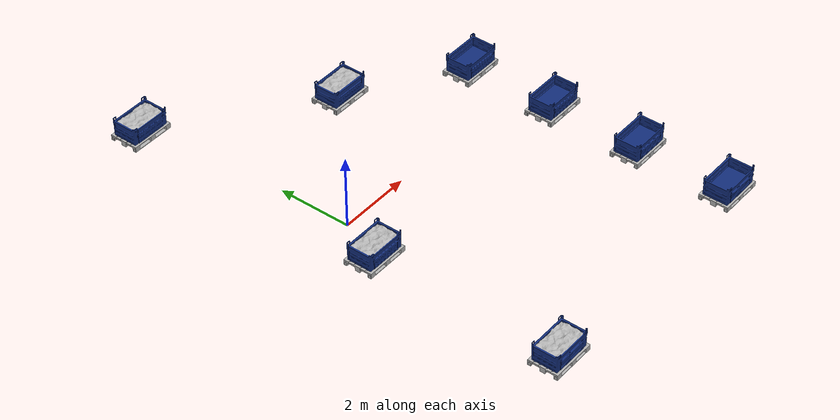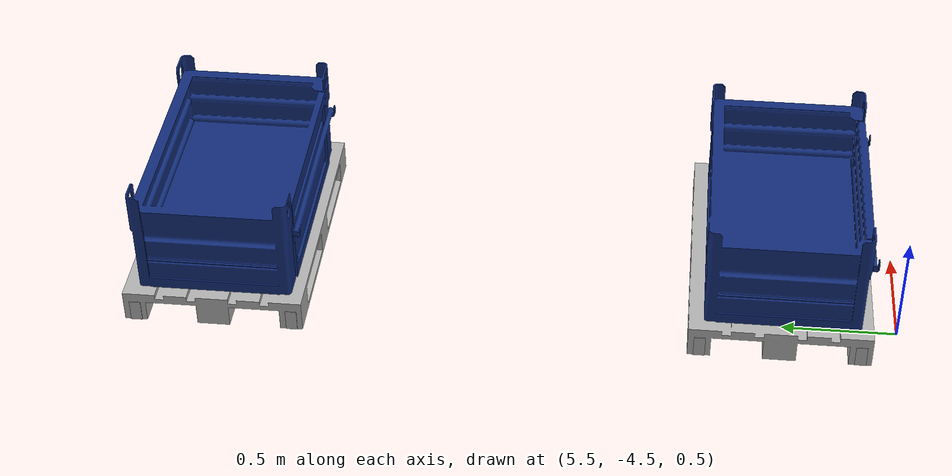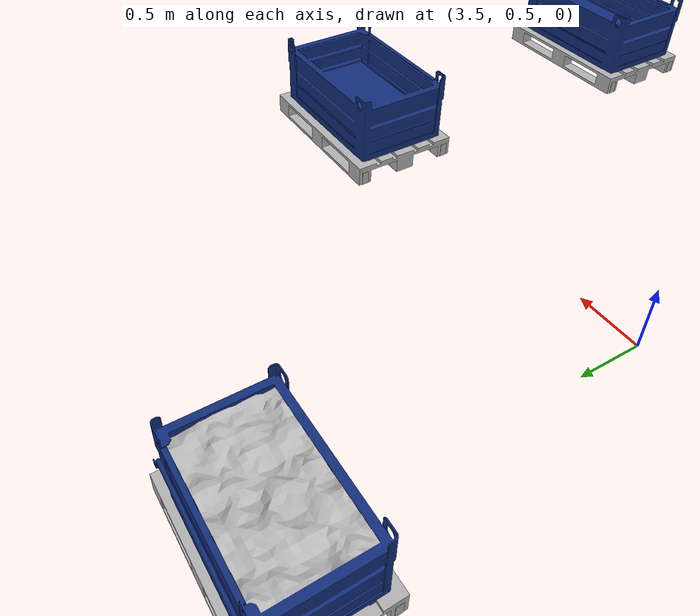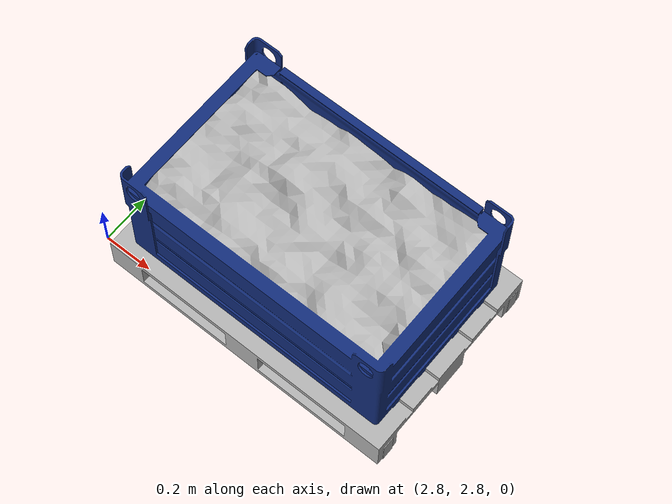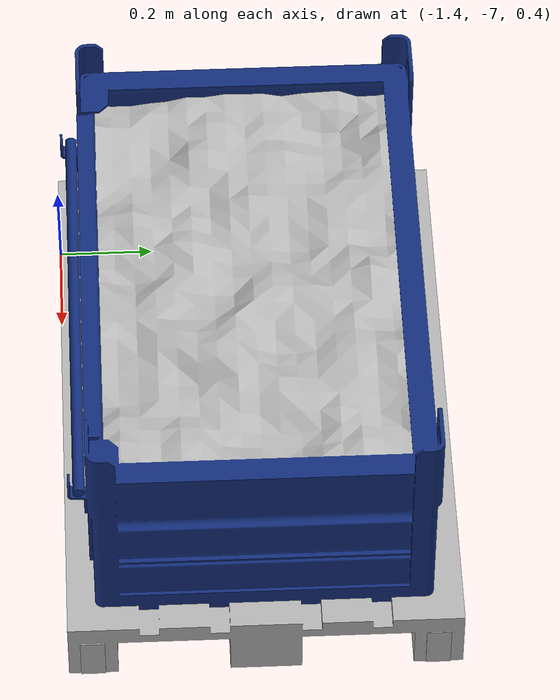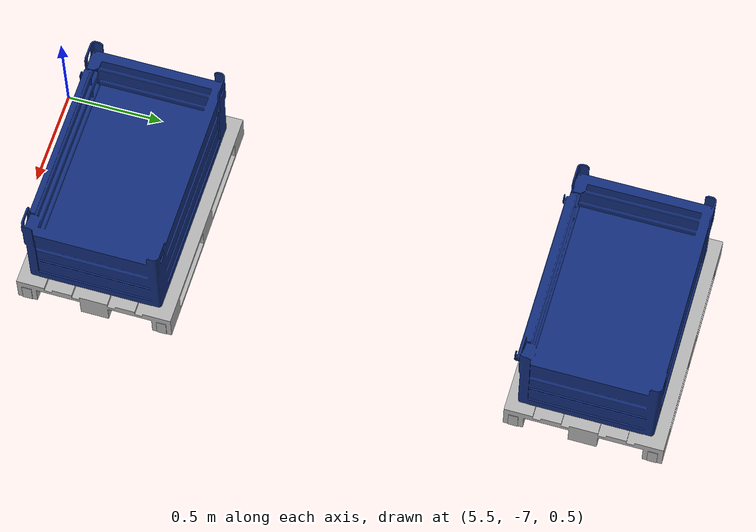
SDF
<sdf version="1.6">
 <world name="default">
  <gravity>0 0 -9.8</gravity>
  <physics default="0" name="default_physics" type="ode">
   <max_step_size>0.001</max_step_size>
   <real_time_factor>1</real_time_factor>
   <real_time_update_rate>1000</real_time_update_rate>
  </physics>
  <model name="empty_europallet_01">
   <include><uri>model://becket_model</uri></include>
   <pose>6 1 0.40 0 0 0.0</pose>
  </model>
  <model name="empty_europallet_02">
   <include><uri>model://becket_model</uri></include>
   <pose>6 -1.5 0.40 0 0 0.0</pose>
  </model>
  <model name="empty_europallet_03">
   <include><uri>model://becket_model</uri></include>
   <pose>6 -4 0.40 0 0 0.0</pose>
  </model>
  <model name="empty_europallet_04">
   <include><uri>model://becket_model</uri></include>
   <pose>6 -6.5 0.40 0 0 0.0</pose>
  </model>
  <model name="europallet_01">
   <include><uri>model://full_becket_model</uri></include>
   <pose>-0.836 5.7 0.40 0 0 0.0</pose>
  </model>
  <model name="europallet_02">
   <include><uri>model://full_becket_model</uri></include>
   <pose>-0.836 -1.5 0.46 0 0 0.0</pose>
  </model>
  <model name="europallet_03">
   <include><uri>model://full_becket_model</uri></include>
   <pose>-0.836 -6.6 0.46 0 0 0.0</pose>
  </model>
  <model name="europallet_05">
   <include><uri>model://full_becket_model</uri></include>
   <pose>3.5 3.13 0.05 0 0 3.14</pose>
  </model>
  <light name="Warehouse_CeilingLight_003" type="point">
   <pose>0 0 9 0 0 0</pose>
   <diffuse>0.5 0.5 0.5 1</diffuse>
   <specular>0.2 0.2 0.2 1</specular>
   <attenuation>
    <range>80</range>
    <constant>0.3</constant>
    <linear>0.01</linear>
    <quadratic>0.001</quadratic>
   </attenuation>
   <direction>0.1 0.1 -1</direction>
  </light>
 </world>
</sdf>

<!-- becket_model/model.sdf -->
<sdf version='1.6'>
  <model name='becket_model'>
    <link name='link_0'>
      <pose frame=''>0 0 0.0 0 -0 0.0</pose>
      <inertial>
         <mass>10</mass>
        <inertia>
          <ixx>0.166667</ixx>
          <ixy>0</ixy>
          <ixz>0</ixz>
          <iyy>0.166667</iyy>
          <iyz>0</iyz>
          <izz>0.166667</izz>
        </inertia>
        <pose frame=''>0 0 0 0 -0 0</pose>
      </inertial>
      <gravity>1</gravity>
      <self_collide>0</self_collide>
      <kinematic>0</kinematic>

    <!-- start becket and europallet definitions -->

      <visual name='becket'>
        <pose frame=''>0 0 0.0 0 0 1.57</pose>
        <geometry>
          <mesh>
		        <uri>model://becket_model/meshes/becket.dae</uri>
            <scale>1 1 1</scale>
          </mesh>
        </geometry>
        <cast_shadows>1</cast_shadows>
        <transparency>0</transparency>
      </visual>

      <visual name='europallet'>
        <pose frame=''>0 0.010 0 0 0 1.57</pose>
        <geometry>
          <mesh>
		<uri>model://becket_model/meshes/europallet.dae</uri>
            <scale>1 1 1</scale>
          </mesh>
        </geometry>
        <material>
          <lighting>1</lighting>
          <script>
            <uri>model://becket_model/materials/scripts</uri>
            <uri>model://becket_model/materials/textures</uri>
            <name>becket_model/Diffuse</name>
          </script>
          <ambient>0.3 0.3 0.3 1</ambient>
          <diffuse>0.7 0.7 0.7 1</diffuse>
          <specular>0.01 0.01 0.01 1</specular>
          <emissive>0 0 0 1</emissive>
          <shader type='vertex'>
            <normal_map>__default__</normal_map>
          </shader>
        </material>
        <cast_shadows>1</cast_shadows>
        <transparency>0</transparency>
      </visual>

      <collision name='collision0'>
        <laser_retro>0</laser_retro>
        <max_contacts>10</max_contacts>
        <pose frame=''>0.0 0.0 0.1 0.0 0.0 0.0</pose>
        <geometry>
          <box>
            <size>1.2 0.80 0.04</size>
          </box>
        </geometry>
      </collision>

      <collision name='collision1'>
        <laser_retro>0</laser_retro>
        <max_contacts>5</max_contacts>
        <pose frame='link_0'>0 -0.04 0.03 0 0 0</pose>
        <geometry>
          <box>
             <size>1.0 0.03 0.1</size>
          </box>
        </geometry>
      </collision>

     <collision name='collision2'>
        <laser_retro>0</laser_retro>
        <max_contacts>5</max_contacts>
       <pose frame='link_0'>0 0.04 0.03 0 0 0</pose>
        <geometry>
          <box>
            <size>1.0 0.03 0.1</size>
          </box>
        </geometry>
      </collision>

      <collision name='collision3'>
        <laser_retro>0</laser_retro>
        <max_contacts>5</max_contacts>
        <pose frame='link_0'>0 0.38 0.03 0 0 0</pose>
        <geometry>
          <box>
            <size>1.0 0.03 0.1</size>
          </box>
        </geometry>
      </collision>

      <collision name='collision4'>
        <laser_retro>0</laser_retro>
        <max_contacts>5</max_contacts>
        <pose frame='link_0'>0 -0.38 0.03 0 -0 0</pose>
        <geometry>
          <box>
            <size>1.0 0.03 0.1</size>
          </box>
        </geometry>
      </collision>
    </link>

  <!-- end becket and europallet definitions -->

     <!-- start reflectors definitions -->

    <link name='link_reflector_1'>
      <pose frame='link_0'>0.6 -0.35 0.05 0 0 0</pose>
      <gravity>0</gravity>

      <visual name='visual0'>
        <pose frame=''>0 0 0.0 0 0 0</pose>
        <geometry>
          <box><size>0.005 0.05 0.1</size></box>
        </geometry>
	<material>
          <lighting>1</lighting>
          <ambient>0.3 0.3 0.3 1</ambient>
          <diffuse>0.7 0.7 0.7 1</diffuse>
          <specular>0.01 0.01 0.01 1</specular>
          <emissive>0 0 0 1</emissive>
          <shader type='vertex'>
            <normal_map>__default__</normal_map>
          </shader>
        </material>
      </visual>
      <collision name='collision0'>
        <pose frame=''>0 0 -0.0 0 -0 0</pose>
        <geometry>
          <box><size>0.005 0.05 0.10</size></box>
        </geometry>
	<laser_retro>8000</laser_retro>
      </collision>
    </link>

    <link name='link_reflector_2'>
      <pose frame='link_0'>0.6 0.35 0.05 0 0 0</pose>
      <gravity>0</gravity>

      <visual name='visual0'>
        <pose frame=''>0 0 -0.0 0 -0 0</pose>
        <geometry>
           <box><size>0.005 0.05 0.1</size></box>
        </geometry>
	<material>
          <lighting>1</lighting>
          <ambient>0.3 0.3 0.3 1</ambient>
          <diffuse>0.7 0.7 0.7 1</diffuse>
          <specular>0.01 0.01 0.01 1</specular>
          <emissive>0 0 0 1</emissive>
          <shader type='vertex'>
            <normal_map>__default__</normal_map>
          </shader>
        </material>
      </visual>
      <collision name='collision0'>
        <pose frame=''>0 0 -0.0 0 -0 0</pose>
        <geometry>
          <box><size>0.005 0.05 0.10</size></box>
        </geometry>
	<laser_retro>8000</laser_retro>
      </collision>
    </link>

    <link name='link_reflector_3'>
       <pose frame='link_0'>-0.6 0.35 0.05 0 0 0</pose>
      <gravity>0</gravity>

      <visual name='visual0'>
        <pose frame=''>0 0 -0.0 0 -0 0</pose>
        <geometry>
         <box><size>0.005 0.05 0.1</size></box>
        </geometry>
	<material>
          <lighting>1</lighting>
          <ambient>0.3 0.3 0.3 1</ambient>
          <diffuse>0.7 0.7 0.7 1</diffuse>
          <specular>0.01 0.01 0.01 1</specular>
          <emissive>0 0 0 1</emissive>
          <shader type='vertex'>
            <normal_map>__default__</normal_map>
          </shader>
        </material>
      </visual>
      <collision name='collision0'>
        <pose frame=''>0 0 -0.0 0 -0 0</pose>
        <geometry>
          <box><size>0.005 0.05 0.10</size></box>
        </geometry>
	<laser_retro>8000</laser_retro>
      </collision>
    </link>

    <link name='link_reflector_4'>
      <pose frame='link_0'>-0.6 -0.35 0.05 0 0 0</pose>
      <gravity>0</gravity>

      <visual name='visual0'>
        <pose frame=''>0 0 -0.0 0 -0 0</pose>
        <geometry>
          <box><size>0.005 0.05 0.1</size></box>
        </geometry>
	<material>
          <lighting>1</lighting>
          <ambient>0.3 0.3 0.3 1</ambient>
          <diffuse>0.7 0.7 0.7 1</diffuse>
          <specular>0.01 0.01 0.01 1</specular>
          <emissive>0 0 0 1</emissive>
          <shader type='vertex'>
            <normal_map>__default__</normal_map>
          </shader>
        </material>
      </visual>
      <collision name='collision0'>
        <pose frame=''>0 0 -0.0 0 -0 0</pose>
        <geometry>
          <box><size>0.005 0.05 0.10</size></box>
        </geometry>
	<laser_retro>8000</laser_retro>
      </collision>
    </link>

    <joint name='joint_0_to_reflector_1' type='fixed'>
      <parent>link_0</parent>
      <child>link_reflector_1</child>
      <pose frame=''>0 0 0 0 -0 0</pose>
      <physics>
        <ode>
          <limit>
            <cfm>0</cfm>
            <erp>0.2</erp>
          </limit>
          <suspension>
            <cfm>0</cfm>
            <erp>0.2</erp>
          </suspension>
        </ode>
      </physics>
    </joint>
    <joint name='joint_0_to_reflector_2' type='fixed'>
      <parent>link_0</parent>
      <child>link_reflector_2</child>
      <pose frame=''>0 0 0 0 -0 0</pose>
      <physics>
        <ode>
          <limit>
            <cfm>0</cfm>
            <erp>0.2</erp>
          </limit>
          <suspension>
            <cfm>0</cfm>
            <erp>0.2</erp>
          </suspension>
        </ode>
      </physics>
    </joint>
    <joint name='joint_0_to_reflector_3' type='fixed'>
      <parent>link_0</parent>
      <child>link_reflector_3</child>
      <pose frame=''>0 0 0 0 -0 0</pose>
      <physics>
        <ode>
          <limit>
            <cfm>0</cfm>
            <erp>0.2</erp>
          </limit>
          <suspension>
            <cfm>0</cfm>
            <erp>0.2</erp>
          </suspension>
        </ode>
      </physics>
    </joint>
    <joint name='joint_0_to_reflector_4' type='fixed'>
      <parent>link_0</parent>
      <child>link_reflector_4</child>
      <pose frame=''>0 0 0 0 -0 0</pose>
      <physics>
        <ode>
          <limit>
            <cfm>0</cfm>
            <erp>0.2</erp>
          </limit>
          <suspension>
            <cfm>0</cfm>
            <erp>0.2</erp>
          </suspension>
        </ode>
      </physics>
    </joint>

    <static>0</static>
    <allow_auto_disable>1</allow_auto_disable>
  </model>
</sdf>

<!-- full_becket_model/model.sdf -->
<sdf version='1.6'>
  <model name='full_becket_model'>
    <link name='link_0'>
      <pose frame=''>0 0 0.0 0 -0 0.0</pose>
      <inertial>
         <mass>10</mass>
        <inertia>
          <ixx>0.166667</ixx>
          <ixy>0</ixy>
          <ixz>0</ixz>
          <iyy>0.166667</iyy>
          <iyz>0</iyz>
          <izz>0.166667</izz>
        </inertia>
        <pose frame=''>0 0 0 0 -0 0</pose>
      </inertial>
      <gravity>1</gravity>
      <self_collide>0</self_collide>
      <kinematic>0</kinematic>

    <!-- start becket and europallet definitions -->

      <visual name='becket'>
        <pose frame=''>0 0 0.13 0 0 1.57</pose>
        <geometry>
          <mesh>
		        <uri>model://full_becket_model/meshes/full_becket.dae</uri>
            <scale>1 1 1</scale>
          </mesh>
        </geometry>
        <cast_shadows>1</cast_shadows>
        <transparency>0</transparency>
      </visual>

      <visual name='europallet'>
        <pose frame=''>0 0.010 0 0 0 1.57</pose>
        <geometry>
          <mesh>
		<uri>model://full_becket_model/meshes/europallet.dae</uri>
            <scale>1 1 1</scale>
          </mesh>
        </geometry>
        <material>
          <lighting>1</lighting>
          <script>
            <uri>model://full_becket_model/materials/scripts</uri>
            <uri>model://full_becket_model/materials/textures</uri>
            <name>becket_model/Diffuse</name>
          </script>
          <ambient>0.3 0.3 0.3 1</ambient>
          <diffuse>0.7 0.7 0.7 1</diffuse>
          <specular>0.01 0.01 0.01 1</specular>
          <emissive>0 0 0 1</emissive>
          <shader type='vertex'>
            <normal_map>__default__</normal_map>
          </shader>
        </material>
        <cast_shadows>1</cast_shadows>
        <transparency>0</transparency>
      </visual>

      <collision name='collision0'>
        <laser_retro>0</laser_retro>
        <max_contacts>10</max_contacts>
        <pose frame=''>0.0 0.0 0.1 0.0 0.0 0.0</pose>
        <geometry>
          <box>
            <size>1.2 0.80 0.04</size>
          </box>
        </geometry>
      </collision>

      <collision name='collision1'>
        <laser_retro>0</laser_retro>
        <max_contacts>5</max_contacts>
        <pose frame='link_0'>0 -0.04 0.03 0 0 0</pose>
        <geometry>
          <box>
             <size>1.0 0.03 0.1</size>
          </box>
        </geometry>
      </collision>

     <collision name='collision2'>
        <laser_retro>0</laser_retro>
        <max_contacts>5</max_contacts>
       <pose frame='link_0'>0 0.04 0.03 0 0 0</pose>
        <geometry>
          <box>
            <size>1.0 0.03 0.1</size>
          </box>
        </geometry>
      </collision>

      <collision name='collision3'>
        <laser_retro>0</laser_retro>
        <max_contacts>5</max_contacts>
        <pose frame='link_0'>0 0.38 0.03 0 0 0</pose>
        <geometry>
          <box>
            <size>1.0 0.03 0.1</size>
          </box>
        </geometry>
      </collision>

      <collision name='collision4'>
        <laser_retro>0</laser_retro>
        <max_contacts>5</max_contacts>
        <pose frame='link_0'>0 -0.38 0.03 0 -0 0</pose>
        <geometry>
          <box>
            <size>1.0 0.03 0.1</size>
          </box>
        </geometry>
      </collision>
    </link>

  <!-- end becket and europallet definitions -->

     <!-- start reflectors definitions -->

    <link name='link_reflector_1'>
      <pose frame='link_0'>0.6 -0.35 0.05 0 0 0</pose>
      <gravity>0</gravity>

      <visual name='visual0'>
        <pose frame=''>0 0 0.0 0 0 0</pose>
        <geometry>
          <box><size>0.005 0.05 0.1</size></box>
        </geometry>
	<material>
          <lighting>1</lighting>
          <ambient>0.3 0.3 0.3 1</ambient>
          <diffuse>0.7 0.7 0.7 1</diffuse>
          <specular>0.01 0.01 0.01 1</specular>
          <emissive>0 0 0 1</emissive>
          <shader type='vertex'>
            <normal_map>__default__</normal_map>
          </shader>
        </material>
      </visual>
      <collision name='collision0'>
        <pose frame=''>0 0 -0.0 0 -0 0</pose>
        <geometry>
          <box><size>0.005 0.05 0.10</size></box>
        </geometry>
	<laser_retro>8000</laser_retro>
      </collision>
    </link>

    <link name='link_reflector_2'>
      <pose frame='link_0'>0.6 0.35 0.05 0 0 0</pose>
      <gravity>0</gravity>

      <visual name='visual0'>
        <pose frame=''>0 0 -0.0 0 -0 0</pose>
        <geometry>
           <box><size>0.005 0.05 0.1</size></box>
        </geometry>
	<material>
          <lighting>1</lighting>
          <ambient>0.3 0.3 0.3 1</ambient>
          <diffuse>0.7 0.7 0.7 1</diffuse>
          <specular>0.01 0.01 0.01 1</specular>
          <emissive>0 0 0 1</emissive>
          <shader type='vertex'>
            <normal_map>__default__</normal_map>
          </shader>
        </material>
      </visual>
      <collision name='collision0'>
        <pose frame=''>0 0 -0.0 0 -0 0</pose>
        <geometry>
          <box><size>0.005 0.05 0.10</size></box>
        </geometry>
	<laser_retro>8000</laser_retro>
      </collision>
    </link>

    <link name='link_reflector_3'>
       <pose frame='link_0'>-0.6 0.35 0.05 0 0 0</pose>
      <gravity>0</gravity>

      <visual name='visual0'>
        <pose frame=''>0 0 -0.0 0 -0 0</pose>
        <geometry>
         <box><size>0.005 0.05 0.1</size></box>
        </geometry>
	<material>
          <lighting>1</lighting>
          <ambient>0.3 0.3 0.3 1</ambient>
          <diffuse>0.7 0.7 0.7 1</diffuse>
          <specular>0.01 0.01 0.01 1</specular>
          <emissive>0 0 0 1</emissive>
          <shader type='vertex'>
            <normal_map>__default__</normal_map>
          </shader>
        </material>
      </visual>
      <collision name='collision0'>
        <pose frame=''>0 0 -0.0 0 -0 0</pose>
        <geometry>
          <box><size>0.005 0.05 0.10</size></box>
        </geometry>
	<laser_retro>8000</laser_retro>
      </collision>
    </link>

    <link name='link_reflector_4'>
      <pose frame='link_0'>-0.6 -0.35 0.05 0 0 0</pose>
      <gravity>0</gravity>

      <visual name='visual0'>
        <pose frame=''>0 0 -0.0 0 -0 0</pose>
        <geometry>
          <box><size>0.005 0.05 0.1</size></box>
        </geometry>
	<material>
          <lighting>1</lighting>
          <ambient>0.3 0.3 0.3 1</ambient>
          <diffuse>0.7 0.7 0.7 1</diffuse>
          <specular>0.01 0.01 0.01 1</specular>
          <emissive>0 0 0 1</emissive>
          <shader type='vertex'>
            <normal_map>__default__</normal_map>
          </shader>
        </material>
      </visual>
      <collision name='collision0'>
        <pose frame=''>0 0 -0.0 0 -0 0</pose>
        <geometry>
          <box><size>0.005 0.05 0.10</size></box>
        </geometry>
	<laser_retro>8000</laser_retro>
      </collision>
    </link>

    <joint name='joint_0_to_reflector_1' type='fixed'>
      <parent>link_0</parent>
      <child>link_reflector_1</child>
      <pose frame=''>0 0 0 0 -0 0</pose>
      <physics>
        <ode>
          <limit>
            <cfm>0</cfm>
            <erp>0.2</erp>
          </limit>
          <suspension>
            <cfm>0</cfm>
            <erp>0.2</erp>
          </suspension>
        </ode>
      </physics>
    </joint>
    <joint name='joint_0_to_reflector_2' type='fixed'>
      <parent>link_0</parent>
      <child>link_reflector_2</child>
      <pose frame=''>0 0 0 0 -0 0</pose>
      <physics>
        <ode>
          <limit>
            <cfm>0</cfm>
            <erp>0.2</erp>
          </limit>
          <suspension>
            <cfm>0</cfm>
            <erp>0.2</erp>
          </suspension>
        </ode>
      </physics>
    </joint>
    <joint name='joint_0_to_reflector_3' type='fixed'>
      <parent>link_0</parent>
      <child>link_reflector_3</child>
      <pose frame=''>0 0 0 0 -0 0</pose>
      <physics>
        <ode>
          <limit>
            <cfm>0</cfm>
            <erp>0.2</erp>
          </limit>
          <suspension>
            <cfm>0</cfm>
            <erp>0.2</erp>
          </suspension>
        </ode>
      </physics>
    </joint>
    <joint name='joint_0_to_reflector_4' type='fixed'>
      <parent>link_0</parent>
      <child>link_reflector_4</child>
      <pose frame=''>0 0 0 0 -0 0</pose>
      <physics>
        <ode>
          <limit>
            <cfm>0</cfm>
            <erp>0.2</erp>
          </limit>
          <suspension>
            <cfm>0</cfm>
            <erp>0.2</erp>
          </suspension>
        </ode>
      </physics>
    </joint>

    <static>0</static>
    <allow_auto_disable>1</allow_auto_disable>
  </model>
</sdf>
